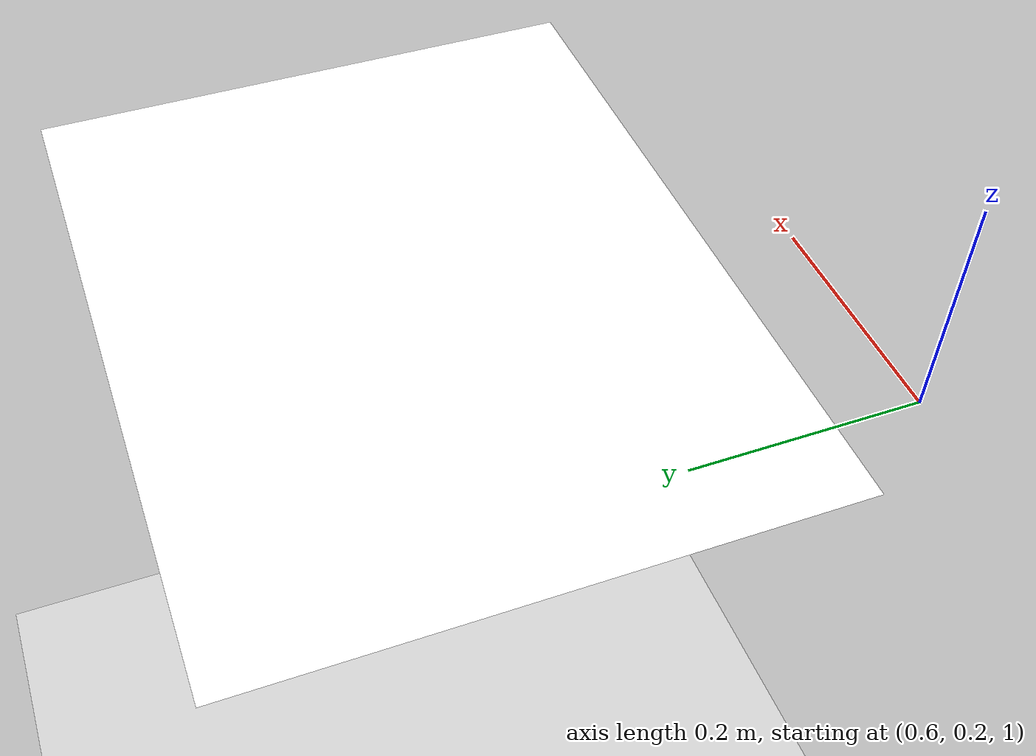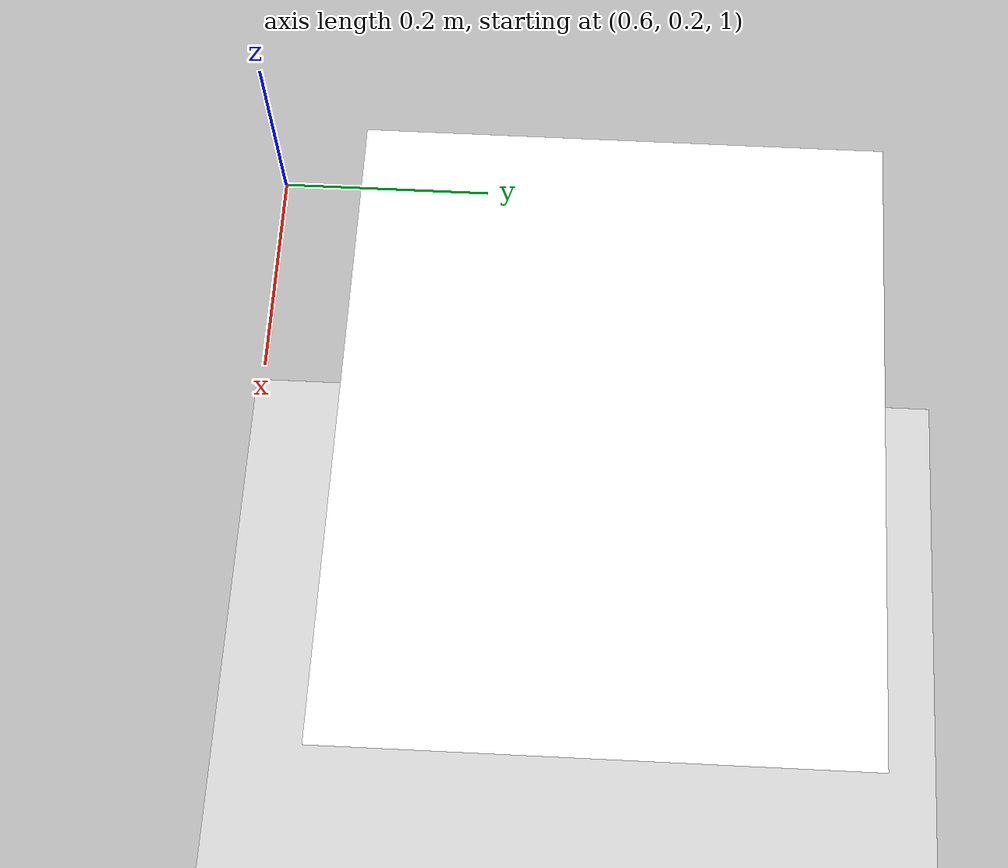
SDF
<?xml version="1.0" ?>
<sdf version="1.5">
  <world name="default">

    <!-- A global light source -->
    <include>
      <uri>model://sun</uri>
    </include>

    <!-- A ground plane -->
    <include>
      <uri>model://ground_plane</uri>
    </include>

    <!-- A stripe texture -->
    <include>
      <static>true</static>
        <pose>0 0 1 0 0 0</pose>
      <uri>model://stripe_texture</uri>
    </include>

  </world>
</sdf>

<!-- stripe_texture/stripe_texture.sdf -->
<sdf version="1.5">
  <model name="stripe_texture">
    <static>true</static>
    <link name="stripe_texture_link">
        <collision name="stripe_texture_collision">
         <geometry>
            <mesh>
                <uri>model://stripe_texture/meshes/model.dae</uri>
                <scale>0.5 0.5 0.5</scale>
            </mesh>
        </geometry>
      </collision>

      <visual name="stripe_texture_mesh">
        <cast_shadows>false</cast_shadows>
        <geometry>
            <mesh>
                <uri>model://stripe_texture/meshes/model.dae</uri>
                <scale>0.5 0.5 0.5</scale>
            </mesh>
        </geometry>
      </visual>
    </link>
  </model>
</sdf>
